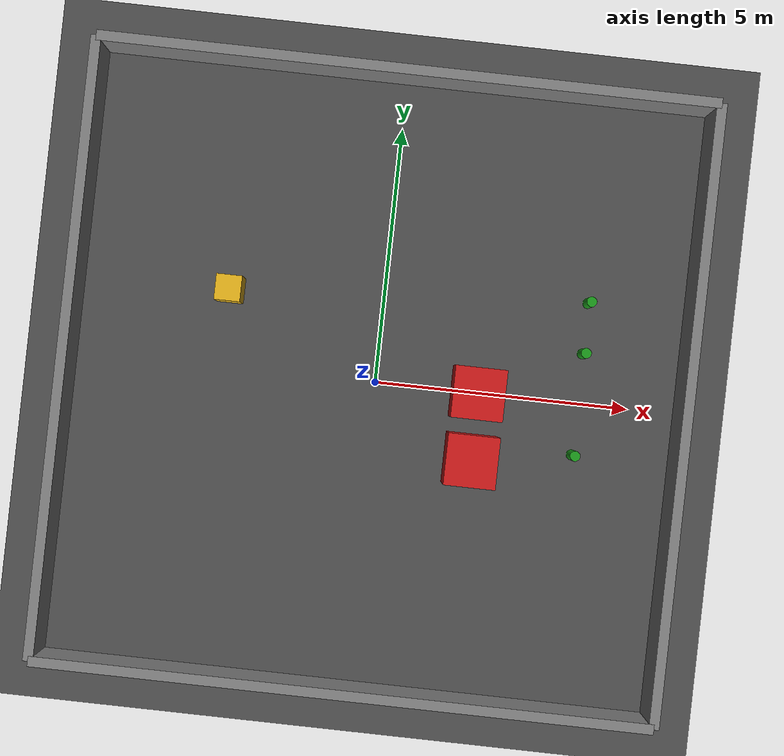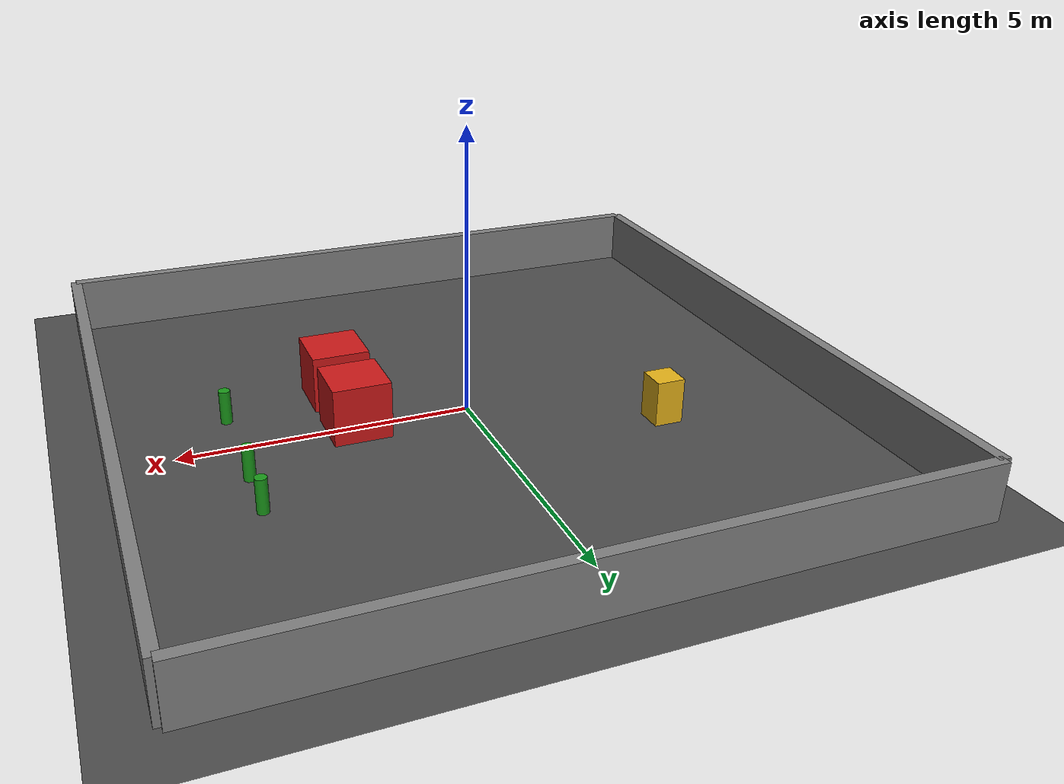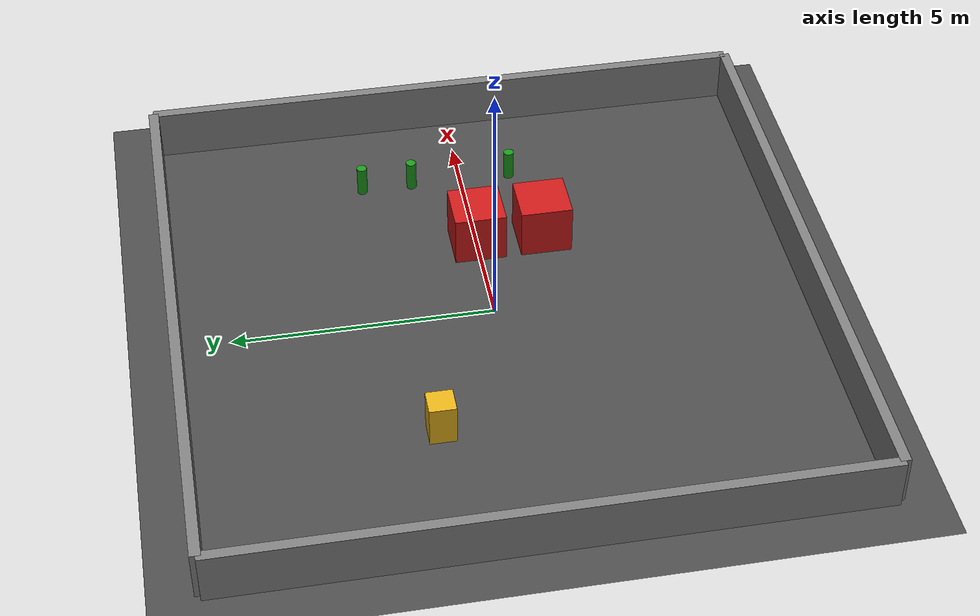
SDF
<?xml version="1.0"?>
<sdf version="1.9">
  <world name="agri_field">

    <physics name="1ms" type="ignored">
      <max_step_size>0.001</max_step_size>
      <real_time_factor>1.0</real_time_factor>
    </physics>

    <plugin
      filename="gz-sim-physics-system"
      name="gz::sim::systems::Physics">
    </plugin>
    <plugin
      filename="gz-sim-sensors-system"
      name="gz::sim::systems::Sensors">
      <render_engine>ogre2</render_engine>
    </plugin>
    <plugin
      filename="gz-sim-scene-broadcaster-system"
      name="gz::sim::systems::SceneBroadcaster">
    </plugin>
    <plugin
      filename="gz-sim-user-commands-system"
      name="gz::sim::systems::UserCommands">
    </plugin>

    <light type="directional" name="sun">
      <cast_shadows>true</cast_shadows>
      <pose>0 0 10 0 0 0</pose>
      <diffuse>0.8 0.8 0.8 1</diffuse>
      <specular>0.2 0.2 0.2 1</specular>
      <direction>-0.5 0.1 -0.9</direction>
    </light>

    <model name="ground_plane">
      <static>true</static>
      <link name="link">
        <collision name="collision">
          <geometry><plane><normal>0 0 1</normal><size>50 50</size></plane></geometry>
        </collision>
        <visual name="visual">
          <geometry><plane><normal>0 0 1</normal><size>50 50</size></plane></geometry>
          <material>
            <ambient>0.3 0.3 0.3 1</ambient>
            <diffuse>0.3 0.3 0.3 1</diffuse>
          </material>
        </visual>
      </link>
    </model>

    <model name="obstacle_1">
      <static>true</static>
      <pose>2 0 0.5 0 0 0</pose>
      <link name="link">
        <collision name="collision">
          <geometry><box><size>1 1 1</size></box></geometry>
        </collision>
        <visual name="visual">
          <geometry><box><size>1 1 1</size></box></geometry>
          <material>
            <ambient>0.8 0.1 0.1 1</ambient>
            <diffuse>0.8 0.1 0.1 1</diffuse>
          </material>
        </visual>
      </link>
    </model>

    <model name="crop_row_1_plant_1">
      <static>true</static>
      <pose>4 1 0.3 0 0 0</pose>
      <link name="link">
        <collision name="collision">
          <geometry><cylinder><radius>0.1</radius><length>0.6</length></cylinder></geometry>
        </collision>
        <visual name="visual">
          <geometry><cylinder><radius>0.1</radius><length>0.6</length></cylinder></geometry>
          <material><ambient>0.1 0.6 0.1 1</ambient><diffuse>0.1 0.6 0.1 1</diffuse></material>
        </visual>
      </link>
    </model>

    <model name="crop_row_1_plant_2">
      <static>true</static>
      <pose>4 2 0.3 0 0 0</pose>
      <link name="link">
        <collision name="collision">
          <geometry><cylinder><radius>0.1</radius><length>0.6</length></cylinder></geometry>
        </collision>
        <visual name="visual">
          <geometry><cylinder><radius>0.1</radius><length>0.6</length></cylinder></geometry>
          <material><ambient>0.1 0.6 0.1 1</ambient><diffuse>0.1 0.6 0.1 1</diffuse></material>
        </visual>
      </link>
    </model>

    <model name="crop_row_2_plant_1">
      <static>true</static>
      <pose>4 -1 0.3 0 0 0</pose>
      <link name="link">
        <collision name="collision">
          <geometry><cylinder><radius>0.1</radius><length>0.6</length></cylinder></geometry>
        </collision>
        <visual name="visual">
          <geometry><cylinder><radius>0.1</radius><length>0.6</length></cylinder></geometry>
          <material><ambient>0.1 0.6 0.1 1</ambient><diffuse>0.1 0.6 0.1 1</diffuse></material>
        </visual>
      </link>
    </model>

    <model name="boundary_wall_north">
      <static>true</static>
      <pose>0 6 0.5 0 0 0</pose>
      <link name="link">
        <collision name="collision">
          <geometry><box><size>12 0.2 1</size></box></geometry>
        </collision>
        <visual name="visual">
          <geometry><box><size>12 0.2 1</size></box></geometry>
          <material><ambient>0.5 0.5 0.5 1</ambient><diffuse>0.5 0.5 0.5 1</diffuse></material>
        </visual>
      </link>
    </model>

    <model name="boundary_wall_south">
      <static>true</static>
      <pose>0 -6 0.5 0 0 0</pose>
      <link name="link">
        <collision name="collision">
          <geometry><box><size>12 0.2 1</size></box></geometry>
        </collision>
        <visual name="visual">
          <geometry><box><size>12 0.2 1</size></box></geometry>
          <material><ambient>0.5 0.5 0.5 1</ambient><diffuse>0.5 0.5 0.5 1</diffuse></material>
        </visual>
      </link>
    </model>

    <model name="boundary_wall_east">
      <static>true</static>
      <pose>6 0 0.5 0 0 1.5708</pose>
      <link name="link">
        <collision name="collision">
          <geometry><box><size>12 0.2 1</size></box></geometry>
        </collision>
        <visual name="visual">
          <geometry><box><size>12 0.2 1</size></box></geometry>
          <material><ambient>0.5 0.5 0.5 1</ambient><diffuse>0.5 0.5 0.5 1</diffuse></material>
        </visual>

      </link>
    </model>

    <model name="boundary_wall_west">
      <static>true</static>
      <pose>-6 0 0.5 0 0 1.5708</pose>
      <link name="link">
        <collision name="collision">
          <geometry><box><size>12 0.2 1</size></box></geometry>
        </collision>

        <visual name="visual">
          <geometry><box><size>12 0.2 1</size></box></geometry>
          <material><ambient>0.5 0.5 0.5 1</ambient><diffuse>0.5 0.5 0.5 1</diffuse></material>
        </visual>
      </link>
    </model>

    <model name='obstacle_2'>
      <static>true</static>
      <pose>2 -1.3 0.5 0 0 0</pose>
      <link name='link'>
        <collision name="collision">
          <geometry><box><size>1 1 1</size></box></geometry>
        </collision>

        <visual name='visual'>
          <geometry><box><size>1 1 1</size></box></geometry>
          <material><ambient>0.8 0.1 0.1 1</ambient><diffuse>0.8 0.1 0.1 1</diffuse></material>
        </visual>

      </link>
    </model>

    <model name="dynamic_test_obstacle">
      <static>true</static>
      <pose>-3 1.5 0.4 0 0 0</pose>
      <link name="link">
        <collision name='collision'>
          <geometry><box><size>0.5 0.5 0.8</size></box></geometry>
        </collision>

        <visual name='visual'>
          <geometry><box><size>0.5 0.5 0.8</size></box></geometry>
          <material><ambient>0.9 0.7 0.1 1</ambient><diffuse>0.9 0.7 0.1 1</diffuse></material>
        </visual>
      </link>
    </model>

  </world>
</sdf>
